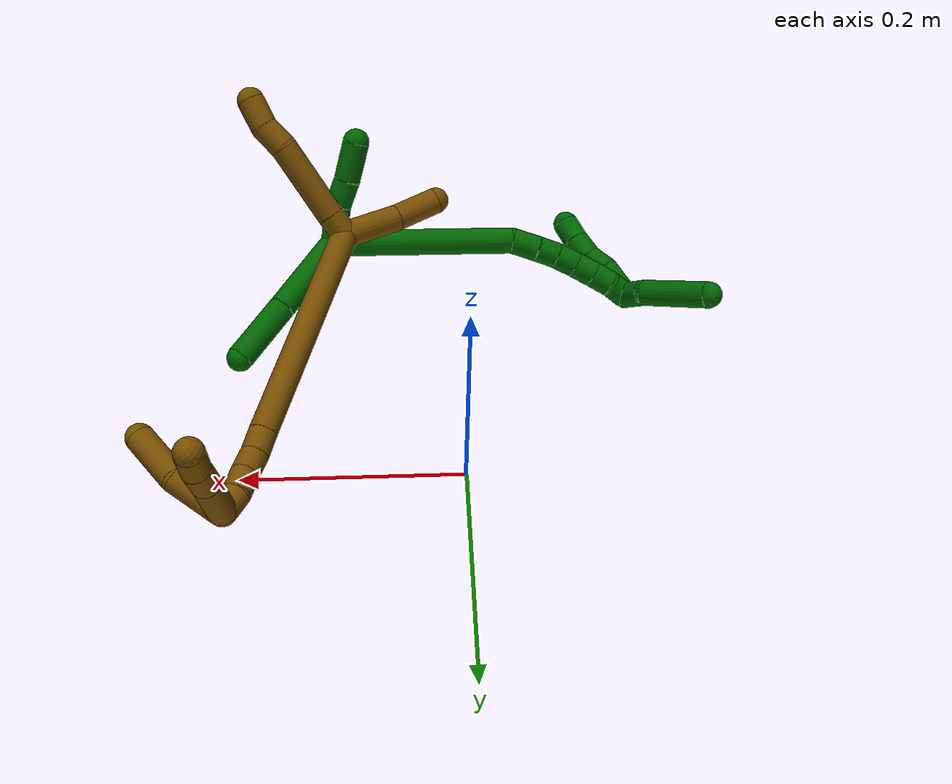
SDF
<sdf version="1.7">
 <world name="default">
  <model name="6">
   <static>0</static>
   <link name="6">
    <collision name="collision-cylinder-e_1_2_8">
     <pose>0.040574 -0.013552 0.003498 1.31818 1.23861 1.00908</pose>
     <geometry><cylinder><radius>0.0125</radius><length>0.08584</length></cylinder></geometry>
     <surface>
      <friction><ode><mu>1.16</mu><mu2>1.16</mu2><slip1>0</slip1><slip2>0</slip2></ode></friction>
      <contact><ode><kp>1e+06</kp><kd>1</kd><max_vel>0</max_vel><min_depth>0.001</min_depth></ode></contact>
     </surface>
    </collision>
    <visual name="visual-cylinder-e_1_2_8">
     <pose>0.040574 -0.013552 0.003498 1.31818 1.23861 1.00908</pose>
     <geometry><cylinder><radius>0.0125</radius><length>0.08584</length></cylinder></geometry>
     <material><ambient>0 0.392157 0.003922 1</ambient></material>
    </visual>
    <collision name="collision-cylinder-e_2_8_6">
     <pose>0.11168 -0.036643 0.00943 1.32098 1.25892 1.02979</pose>
     <geometry><cylinder><radius>0.0125</radius><length>0.06416</length></cylinder></geometry>
     <surface>
      <friction><ode><mu>1.16</mu><mu2>1.16</mu2><slip1>0</slip1><slip2>0</slip2></ode></friction>
      <contact><ode><kp>1e+06</kp><kd>1</kd><max_vel>0</max_vel><min_depth>0.001</min_depth></ode></contact>
     </surface>
    </collision>
    <visual name="visual-cylinder-e_2_8_6">
     <pose>0.11168 -0.036643 0.00943 1.32098 1.25892 1.02979</pose>
     <geometry><cylinder><radius>0.0125</radius><length>0.06416</length></cylinder></geometry>
     <material><ambient>0 0.392157 0.003922 1</ambient></material>
    </visual>
    <collision name="collision-cylinder-e_1_2_9">
     <pose>-0.012663 -0.002599 -0.012739 2.94033 -0.772189 -2.65465</pose>
     <geometry><cylinder><radius>0.0125</radius><length>0.036298</length></cylinder></geometry>
     <surface>
      <friction><ode><mu>1.16</mu><mu2>1.16</mu2><slip1>0</slip1><slip2>0</slip2></ode></friction>
      <contact><ode><kp>1e+06</kp><kd>1</kd><max_vel>0</max_vel><min_depth>0.001</min_depth></ode></contact>
     </surface>
    </collision>
    <visual name="visual-cylinder-e_1_2_9">
     <pose>-0.012663 -0.002599 -0.012739 2.94033 -0.772189 -2.65465</pose>
     <geometry><cylinder><radius>0.0125</radius><length>0.036298</length></cylinder></geometry>
     <material><ambient>0 0.392157 0.003922 1</ambient></material>
    </visual>
    <collision name="collision-cylinder-e_2_9_10">
     <pose>-0.036046 -0.008452 -0.03246 2.70553 -0.947797 -2.32606</pose>
     <geometry><cylinder><radius>0.0125</radius><length>0.026402</length></cylinder></geometry>
     <surface>
      <friction><ode><mu>1.16</mu><mu2>1.16</mu2><slip1>0</slip1><slip2>0</slip2></ode></friction>
      <contact><ode><kp>1e+06</kp><kd>1</kd><max_vel>0</max_vel><min_depth>0.001</min_depth></ode></contact>
     </surface>
    </collision>
    <visual name="visual-cylinder-e_2_9_10">
     <pose>-0.036046 -0.008452 -0.03246 2.70553 -0.947797 -2.32606</pose>
     <geometry><cylinder><radius>0.0125</radius><length>0.026402</length></cylinder></geometry>
     <material><ambient>0 0.392157 0.003922 1</ambient></material>
    </visual>
    <collision name="collision-cylinder-e_3_10_5">
     <pose>-0.060719 -0.016361 -0.050909 2.75589 -0.845184 -2.32223</pose>
     <geometry><cylinder><radius>0.0125</radius><length>0.0373</length></cylinder></geometry>
     <surface>
      <friction><ode><mu>1.16</mu><mu2>1.16</mu2><slip1>0</slip1><slip2>0</slip2></ode></friction>
      <contact><ode><kp>1e+06</kp><kd>1</kd><max_vel>0</max_vel><min_depth>0.001</min_depth></ode></contact>
     </surface>
    </collision>
    <visual name="visual-cylinder-e_3_10_5">
     <pose>-0.060719 -0.016361 -0.050909 2.75589 -0.845184 -2.32223</pose>
     <geometry><cylinder><radius>0.0125</radius><length>0.0373</length></cylinder></geometry>
     <material><ambient>0 0.392157 0.003922 1</ambient></material>
    </visual>
    <collision name="collision-cylinder-e_1_2_11">
     <pose>-0.064799 -0.023395 0.05247 0.419423 -0.845451 -0.190909</pose>
     <geometry><cylinder><radius>0.0125</radius><length>0.173198</length></cylinder></geometry>
     <surface>
      <friction><ode><mu>1.16</mu><mu2>1.16</mu2><slip1>0</slip1><slip2>0</slip2></ode></friction>
      <contact><ode><kp>1e+06</kp><kd>1</kd><max_vel>0</max_vel><min_depth>0.001</min_depth></ode></contact>
     </surface>
    </collision>
    <visual name="visual-cylinder-e_1_2_11">
     <pose>-0.064799 -0.023395 0.05247 0.419423 -0.845451 -0.190909</pose>
     <geometry><cylinder><radius>0.0125</radius><length>0.173198</length></cylinder></geometry>
     <material><ambient>0 0.392157 0.003922 1</ambient></material>
    </visual>
    <collision name="collision-cylinder-e_2_11_12">
     <pose>-0.136151 -0.050871 0.115688 0.362833 -0.517992 -0.097124</pose>
     <geometry><cylinder><radius>0.0125</radius><length>0.026467</length></cylinder></geometry>
     <surface>
      <friction><ode><mu>1.16</mu><mu2>1.16</mu2><slip1>0</slip1><slip2>0</slip2></ode></friction>
      <contact><ode><kp>1e+06</kp><kd>1</kd><max_vel>0</max_vel><min_depth>0.001</min_depth></ode></contact>
     </surface>
    </collision>
    <visual name="visual-cylinder-e_2_11_12">
     <pose>-0.136151 -0.050871 0.115688 0.362833 -0.517992 -0.097124</pose>
     <geometry><cylinder><radius>0.0125</radius><length>0.026467</length></cylinder></geometry>
     <material><ambient>0 0.392157 0.003922 1</ambient></material>
    </visual>
    <collision name="collision-cylinder-e_3_12_13">
     <pose>-0.147639 -0.057417 0.134822 0.285913 -0.514072 -0.075632</pose>
     <geometry><cylinder><radius>0.0125</radius><length>0.020074</length></cylinder></geometry>
     <surface>
      <friction><ode><mu>1.16</mu><mu2>1.16</mu2><slip1>0</slip1><slip2>0</slip2></ode></friction>
      <contact><ode><kp>1e+06</kp><kd>1</kd><max_vel>0</max_vel><min_depth>0.001</min_depth></ode></contact>
     </surface>
    </collision>
    <visual name="visual-cylinder-e_3_12_13">
     <pose>-0.147639 -0.057417 0.134822 0.285913 -0.514072 -0.075632</pose>
     <geometry><cylinder><radius>0.0125</radius><length>0.020074</length></cylinder></geometry>
     <material><ambient>0 0.392157 0.003922 1</ambient></material>
    </visual>
    <collision name="collision-cylinder-e_4_13_14">
     <pose>-0.156424 -0.062563 0.152163 0.290926 -0.390639 -0.05795</pose>
     <geometry><cylinder><radius>0.0125</radius><length>0.020222</length></cylinder></geometry>
     <surface>
      <friction><ode><mu>1.16</mu><mu2>1.16</mu2><slip1>0</slip1><slip2>0</slip2></ode></friction>
      <contact><ode><kp>1e+06</kp><kd>1</kd><max_vel>0</max_vel><min_depth>0.001</min_depth></ode></contact>
     </surface>
    </collision>
    <visual name="visual-cylinder-e_4_13_14">
     <pose>-0.156424 -0.062563 0.152163 0.290926 -0.390639 -0.05795</pose>
     <geometry><cylinder><radius>0.0125</radius><length>0.020222</length></cylinder></geometry>
     <material><ambient>0 0.392157 0.003922 1</ambient></material>
    </visual>
    <collision name="collision-cylinder-e_5_14_15">
     <pose>-0.163707 -0.06804 0.170103 0.301642 -0.349824 -0.053701</pose>
     <geometry><cylinder><radius>0.0125</radius><length>0.020029</length></cylinder></geometry>
     <surface>
      <friction><ode><mu>1.16</mu><mu2>1.16</mu2><slip1>0</slip1><slip2>0</slip2></ode></friction>
      <contact><ode><kp>1e+06</kp><kd>1</kd><max_vel>0</max_vel><min_depth>0.001</min_depth></ode></contact>
     </surface>
    </collision>
    <visual name="visual-cylinder-e_5_14_15">
     <pose>-0.163707 -0.06804 0.170103 0.301642 -0.349824 -0.053701</pose>
     <geometry><cylinder><radius>0.0125</radius><length>0.020029</length></cylinder></geometry>
     <material><ambient>0 0.392157 0.003922 1</ambient></material>
    </visual>
    <collision name="collision-cylinder-e_6_15_16">
     <pose>-0.170381 -0.073945 0.188025 0.334826 -0.330032 -0.056271</pose>
     <geometry><cylinder><radius>0.0125</radius><length>0.020009</length></cylinder></geometry>
     <surface>
      <friction><ode><mu>1.16</mu><mu2>1.16</mu2><slip1>0</slip1><slip2>0</slip2></ode></friction>
      <contact><ode><kp>1e+06</kp><kd>1</kd><max_vel>0</max_vel><min_depth>0.001</min_depth></ode></contact>
     </surface>
    </collision>
    <visual name="visual-cylinder-e_6_15_16">
     <pose>-0.170381 -0.073945 0.188025 0.334826 -0.330032 -0.056271</pose>
     <geometry><cylinder><radius>0.0125</radius><length>0.020009</length></cylinder></geometry>
     <material><ambient>0 0.392157 0.003922 1</ambient></material>
    </visual>
    <collision name="collision-cylinder-e_7_16_1">
     <pose>-0.176127 -0.077195 0.206645 0.014487 -0.253087 -0.001843</pose>
     <geometry><cylinder><radius>0.0125</radius><length>0.020002</length></cylinder></geometry>
     <surface>
      <friction><ode><mu>1.16</mu><mu2>1.16</mu2><slip1>0</slip1><slip2>0</slip2></ode></friction>
      <contact><ode><kp>1e+06</kp><kd>1</kd><max_vel>0</max_vel><min_depth>0.001</min_depth></ode></contact>
     </surface>
    </collision>
    <visual name="visual-cylinder-e_7_16_1">
     <pose>-0.176127 -0.077195 0.206645 0.014487 -0.253087 -0.001843</pose>
     <geometry><cylinder><radius>0.0125</radius><length>0.020002</length></cylinder></geometry>
     <material><ambient>0 0.392157 0.003922 1</ambient></material>
    </visual>
    <collision name="collision-cylinder-e_1_1_17">
     <pose>-0.181823 -0.067413 0.203039 -2.50015 -0.190121 0.559027</pose>
     <geometry><cylinder><radius>0.0125</radius><length>0.033777</length></cylinder></geometry>
     <surface>
      <friction><ode><mu>1.16</mu><mu2>1.16</mu2><slip1>0</slip1><slip2>0</slip2></ode></friction>
      <contact><ode><kp>1e+06</kp><kd>1</kd><max_vel>0</max_vel><min_depth>0.001</min_depth></ode></contact>
     </surface>
    </collision>
    <visual name="visual-cylinder-e_1_1_17">
     <pose>-0.181823 -0.067413 0.203039 -2.50015 -0.190121 0.559027</pose>
     <geometry><cylinder><radius>0.0125</radius><length>0.033777</length></cylinder></geometry>
     <material><ambient>0 0.392157 0.003922 1</ambient></material>
    </visual>
    <collision name="collision-cylinder-e_2_17_18">
     <pose>-0.184117 -0.050982 0.181794 -2.45608 0.087114 -0.243073</pose>
     <geometry><cylinder><radius>0.0125</radius><length>0.020637</length></cylinder></geometry>
     <surface>
      <friction><ode><mu>1.16</mu><mu2>1.16</mu2><slip1>0</slip1><slip2>0</slip2></ode></friction>
      <contact><ode><kp>1e+06</kp><kd>1</kd><max_vel>0</max_vel><min_depth>0.001</min_depth></ode></contact>
     </surface>
    </collision>
    <visual name="visual-cylinder-e_2_17_18">
     <pose>-0.184117 -0.050982 0.181794 -2.45608 0.087114 -0.243073</pose>
     <geometry><cylinder><radius>0.0125</radius><length>0.020637</length></cylinder></geometry>
     <material><ambient>0 0.392157 0.003922 1</ambient></material>
    </visual>
    <collision name="collision-cylinder-e_3_18_19">
     <pose>-0.185427 -0.037133 0.165613 -2.41283 -0.197702 0.508772</pose>
     <geometry><cylinder><radius>0.0125</radius><length>0.022484</length></cylinder></geometry>
     <surface>
      <friction><ode><mu>1.16</mu><mu2>1.16</mu2><slip1>0</slip1><slip2>0</slip2></ode></friction>
      <contact><ode><kp>1e+06</kp><kd>1</kd><max_vel>0</max_vel><min_depth>0.001</min_depth></ode></contact>
     </surface>
    </collision>
    <visual name="visual-cylinder-e_3_18_19">
     <pose>-0.185427 -0.037133 0.165613 -2.41283 -0.197702 0.508772</pose>
     <geometry><cylinder><radius>0.0125</radius><length>0.022484</length></cylinder></geometry>
     <material><ambient>0 0.392157 0.003922 1</ambient></material>
    </visual>
    <collision name="collision-cylinder-e_4_19_4">
     <pose>-0.190965 -0.022216 0.149332 -2.38696 -0.292416 0.711541</pose>
     <geometry><cylinder><radius>0.0125</radius><length>0.023102</length></cylinder></geometry>
     <surface>
      <friction><ode><mu>1.16</mu><mu2>1.16</mu2><slip1>0</slip1><slip2>0</slip2></ode></friction>
      <contact><ode><kp>1e+06</kp><kd>1</kd><max_vel>0</max_vel><min_depth>0.001</min_depth></ode></contact>
     </surface>
    </collision>
    <visual name="visual-cylinder-e_4_19_4">
     <pose>-0.190965 -0.022216 0.149332 -2.38696 -0.292416 0.711541</pose>
     <geometry><cylinder><radius>0.0125</radius><length>0.023102</length></cylinder></geometry>
     <material><ambient>0 0.392157 0.003922 1</ambient></material>
    </visual>
    <collision name="collision-cylinder-e_1_1_20">
     <pose>-0.182293 -0.091842 0.216102 1.58629 -0.247197 -0.251016</pose>
     <geometry><cylinder><radius>0.0125</radius><length>0.029925</length></cylinder></geometry>
     <surface>
      <friction><ode><mu>1.16</mu><mu2>1.16</mu2><slip1>0</slip1><slip2>0</slip2></ode></friction>
      <contact><ode><kp>1e+06</kp><kd>1</kd><max_vel>0</max_vel><min_depth>0.001</min_depth></ode></contact>
     </surface>
    </collision>
    <visual name="visual-cylinder-e_1_1_20">
     <pose>-0.182293 -0.091842 0.216102 1.58629 -0.247197 -0.251016</pose>
     <geometry><cylinder><radius>0.0125</radius><length>0.029925</length></cylinder></geometry>
     <material><ambient>0 0.392157 0.003922 1</ambient></material>
    </visual>
    <collision name="collision-cylinder-e_2_20_3">
     <pose>-0.199555 -0.137207 0.225382 1.27201 -0.398658 -0.296127</pose>
     <geometry><cylinder><radius>0.0125</radius><length>0.070075</length></cylinder></geometry>
     <surface>
      <friction><ode><mu>1.16</mu><mu2>1.16</mu2><slip1>0</slip1><slip2>0</slip2></ode></friction>
      <contact><ode><kp>1e+06</kp><kd>1</kd><max_vel>0</max_vel><min_depth>0.001</min_depth></ode></contact>
     </surface>
    </collision>
    <visual name="visual-cylinder-e_2_20_3">
     <pose>-0.199555 -0.137207 0.225382 1.27201 -0.398658 -0.296127</pose>
     <geometry><cylinder><radius>0.0125</radius><length>0.070075</length></cylinder></geometry>
     <material><ambient>0 0.392157 0.003922 1</ambient></material>
    </visual>
    <collision name="collision-sphere-3">
     <pose>-0.213156 -0.168066 0.234887 0 -0 0</pose>
     <geometry><sphere><radius>0.0125</radius></sphere></geometry>
     <surface>
      <friction><ode><mu>1.16</mu><mu2>1.16</mu2><slip1>0</slip1><slip2>0</slip2></ode></friction>
      <contact><ode><kp>1e+06</kp><kd>1</kd><max_vel>0</max_vel><min_depth>0.001</min_depth></ode></contact>
     </surface>
    </collision>
    <visual name="visual-sphere-3">
     <pose>-0.213156 -0.168066 0.234887 0 -0 0</pose>
     <geometry><sphere><radius>0.0125</radius></sphere></geometry>
     <material><ambient>0 0.392157 0.003922 1</ambient></material>
    </visual>
    <collision name="collision-sphere-20">
     <pose>-0.185954 -0.106348 0.215877 0 -0 0</pose>
     <geometry><sphere><radius>0.0125</radius></sphere></geometry>
     <surface>
      <friction><ode><mu>1.16</mu><mu2>1.16</mu2><slip1>0</slip1><slip2>0</slip2></ode></friction>
      <contact><ode><kp>1e+06</kp><kd>1</kd><max_vel>0</max_vel><min_depth>0.001</min_depth></ode></contact>
     </surface>
    </collision>
    <visual name="visual-sphere-20">
     <pose>-0.185954 -0.106348 0.215877 0 -0 0</pose>
     <geometry><sphere><radius>0.0125</radius></sphere></geometry>
     <material><ambient>0 0.392157 0.003922 1</ambient></material>
    </visual>
    <collision name="collision-sphere-4">
     <pose>-0.194295 -0.014639 0.141274 0 -0 0</pose>
     <geometry><sphere><radius>0.0125</radius></sphere></geometry>
     <surface>
      <friction><ode><mu>1.16</mu><mu2>1.16</mu2><slip1>0</slip1><slip2>0</slip2></ode></friction>
      <contact><ode><kp>1e+06</kp><kd>1</kd><max_vel>0</max_vel><min_depth>0.001</min_depth></ode></contact>
     </surface>
    </collision>
    <visual name="visual-sphere-4">
     <pose>-0.194295 -0.014639 0.141274 0 -0 0</pose>
     <geometry><sphere><radius>0.0125</radius></sphere></geometry>
     <material><ambient>0 0.392157 0.003922 1</ambient></material>
    </visual>
    <collision name="collision-sphere-5">
     <pose>-0.074671 -0.021017 -0.062375 0 -0 0</pose>
     <geometry><sphere><radius>0.0125</radius></sphere></geometry>
     <surface>
      <friction><ode><mu>1.16</mu><mu2>1.16</mu2><slip1>0</slip1><slip2>0</slip2></ode></friction>
      <contact><ode><kp>1e+06</kp><kd>1</kd><max_vel>0</max_vel><min_depth>0.001</min_depth></ode></contact>
     </surface>
    </collision>
    <visual name="visual-sphere-5">
     <pose>-0.074671 -0.021017 -0.062375 0 -0 0</pose>
     <geometry><sphere><radius>0.0125</radius></sphere></geometry>
     <material><ambient>0 0.392157 0.003922 1</ambient></material>
    </visual>
    <collision name="collision-sphere-10">
     <pose>-0.046767 -0.011705 -0.039442 0 -0 0</pose>
     <geometry><sphere><radius>0.0125</radius></sphere></geometry>
     <surface>
      <friction><ode><mu>1.16</mu><mu2>1.16</mu2><slip1>0</slip1><slip2>0</slip2></ode></friction>
      <contact><ode><kp>1e+06</kp><kd>1</kd><max_vel>0</max_vel><min_depth>0.001</min_depth></ode></contact>
     </surface>
    </collision>
    <visual name="visual-sphere-10">
     <pose>-0.046767 -0.011705 -0.039442 0 -0 0</pose>
     <geometry><sphere><radius>0.0125</radius></sphere></geometry>
     <material><ambient>0 0.392157 0.003922 1</ambient></material>
    </visual>
    <collision name="collision-sphere-6">
     <pose>0.142212 -0.046181 0.011864 0 -0 0</pose>
     <geometry><sphere><radius>0.0125</radius></sphere></geometry>
     <surface>
      <friction><ode><mu>1.16</mu><mu2>1.16</mu2><slip1>0</slip1><slip2>0</slip2></ode></friction>
      <contact><ode><kp>1e+06</kp><kd>1</kd><max_vel>0</max_vel><min_depth>0.001</min_depth></ode></contact>
     </surface>
    </collision>
    <visual name="visual-sphere-6">
     <pose>0.142212 -0.046181 0.011864 0 -0 0</pose>
     <geometry><sphere><radius>0.0125</radius></sphere></geometry>
     <material><ambient>0 0.392157 0.003922 1</ambient></material>
    </visual>
    <collision name="collision-sphere-9">
     <pose>-0.025325 -0.005198 -0.025479 0 -0 0</pose>
     <geometry><sphere><radius>0.0125</radius></sphere></geometry>
     <surface>
      <friction><ode><mu>1.16</mu><mu2>1.16</mu2><slip1>0</slip1><slip2>0</slip2></ode></friction>
      <contact><ode><kp>1e+06</kp><kd>1</kd><max_vel>0</max_vel><min_depth>0.001</min_depth></ode></contact>
     </surface>
    </collision>
    <visual name="visual-sphere-9">
     <pose>-0.025325 -0.005198 -0.025479 0 -0 0</pose>
     <geometry><sphere><radius>0.0125</radius></sphere></geometry>
     <material><ambient>0 0.392157 0.003922 1</ambient></material>
    </visual>
    <collision name="collision-sphere-2">
     <geometry><sphere><radius>0.0125</radius></sphere></geometry>
     <surface>
      <friction><ode><mu>1.16</mu><mu2>1.16</mu2><slip1>0</slip1><slip2>0</slip2></ode></friction>
      <contact><ode><kp>1e+06</kp><kd>1</kd><max_vel>0</max_vel><min_depth>0.001</min_depth></ode></contact>
     </surface>
    </collision>
    <visual name="visual-sphere-2">
     <geometry><sphere><radius>0.0125</radius></sphere></geometry>
     <material><ambient>0 0.392157 0.003922 1</ambient></material>
    </visual>
    <collision name="collision-sphere-19">
     <pose>-0.187635 -0.029793 0.15739 0 -0 0</pose>
     <geometry><sphere><radius>0.0125</radius></sphere></geometry>
     <surface>
      <friction><ode><mu>1.16</mu><mu2>1.16</mu2><slip1>0</slip1><slip2>0</slip2></ode></friction>
      <contact><ode><kp>1e+06</kp><kd>1</kd><max_vel>0</max_vel><min_depth>0.001</min_depth></ode></contact>
     </surface>
    </collision>
    <visual name="visual-sphere-19">
     <pose>-0.187635 -0.029793 0.15739 0 -0 0</pose>
     <geometry><sphere><radius>0.0125</radius></sphere></geometry>
     <material><ambient>0 0.392157 0.003922 1</ambient></material>
    </visual>
    <collision name="collision-sphere-8">
     <pose>0.081147 -0.027105 0.006997 0 -0 0</pose>
     <geometry><sphere><radius>0.0125</radius></sphere></geometry>
     <surface>
      <friction><ode><mu>1.16</mu><mu2>1.16</mu2><slip1>0</slip1><slip2>0</slip2></ode></friction>
      <contact><ode><kp>1e+06</kp><kd>1</kd><max_vel>0</max_vel><min_depth>0.001</min_depth></ode></contact>
     </surface>
    </collision>
    <visual name="visual-sphere-8">
     <pose>0.081147 -0.027105 0.006997 0 -0 0</pose>
     <geometry><sphere><radius>0.0125</radius></sphere></geometry>
     <material><ambient>0 0.392157 0.003922 1</ambient></material>
    </visual>
    <collision name="collision-sphere-11">
     <pose>-0.129599 -0.04679 0.104939 0 -0 0</pose>
     <geometry><sphere><radius>0.0125</radius></sphere></geometry>
     <surface>
      <friction><ode><mu>1.16</mu><mu2>1.16</mu2><slip1>0</slip1><slip2>0</slip2></ode></friction>
      <contact><ode><kp>1e+06</kp><kd>1</kd><max_vel>0</max_vel><min_depth>0.001</min_depth></ode></contact>
     </surface>
    </collision>
    <visual name="visual-sphere-11">
     <pose>-0.129599 -0.04679 0.104939 0 -0 0</pose>
     <geometry><sphere><radius>0.0125</radius></sphere></geometry>
     <material><ambient>0 0.392157 0.003922 1</ambient></material>
    </visual>
    <collision name="collision-sphere-12">
     <pose>-0.142703 -0.054952 0.126437 0 -0 0</pose>
     <geometry><sphere><radius>0.0125</radius></sphere></geometry>
     <surface>
      <friction><ode><mu>1.16</mu><mu2>1.16</mu2><slip1>0</slip1><slip2>0</slip2></ode></friction>
      <contact><ode><kp>1e+06</kp><kd>1</kd><max_vel>0</max_vel><min_depth>0.001</min_depth></ode></contact>
     </surface>
    </collision>
    <visual name="visual-sphere-12">
     <pose>-0.142703 -0.054952 0.126437 0 -0 0</pose>
     <geometry><sphere><radius>0.0125</radius></sphere></geometry>
     <material><ambient>0 0.392157 0.003922 1</ambient></material>
    </visual>
    <collision name="collision-sphere-13">
     <pose>-0.152574 -0.059882 0.143207 0 -0 0</pose>
     <geometry><sphere><radius>0.0125</radius></sphere></geometry>
     <surface>
      <friction><ode><mu>1.16</mu><mu2>1.16</mu2><slip1>0</slip1><slip2>0</slip2></ode></friction>
      <contact><ode><kp>1e+06</kp><kd>1</kd><max_vel>0</max_vel><min_depth>0.001</min_depth></ode></contact>
     </surface>
    </collision>
    <visual name="visual-sphere-13">
     <pose>-0.152574 -0.059882 0.143207 0 -0 0</pose>
     <geometry><sphere><radius>0.0125</radius></sphere></geometry>
     <material><ambient>0 0.392157 0.003922 1</ambient></material>
    </visual>
    <collision name="collision-sphere-14">
     <pose>-0.160274 -0.065245 0.16112 0 -0 0</pose>
     <geometry><sphere><radius>0.0125</radius></sphere></geometry>
     <surface>
      <friction><ode><mu>1.16</mu><mu2>1.16</mu2><slip1>0</slip1><slip2>0</slip2></ode></friction>
      <contact><ode><kp>1e+06</kp><kd>1</kd><max_vel>0</max_vel><min_depth>0.001</min_depth></ode></contact>
     </surface>
    </collision>
    <visual name="visual-sphere-14">
     <pose>-0.160274 -0.065245 0.16112 0 -0 0</pose>
     <geometry><sphere><radius>0.0125</radius></sphere></geometry>
     <material><ambient>0 0.392157 0.003922 1</ambient></material>
    </visual>
    <collision name="collision-sphere-15">
     <pose>-0.167139 -0.070835 0.179086 0 -0 0</pose>
     <geometry><sphere><radius>0.0125</radius></sphere></geometry>
     <surface>
      <friction><ode><mu>1.16</mu><mu2>1.16</mu2><slip1>0</slip1><slip2>0</slip2></ode></friction>
      <contact><ode><kp>1e+06</kp><kd>1</kd><max_vel>0</max_vel><min_depth>0.001</min_depth></ode></contact>
     </surface>
    </collision>
    <visual name="visual-sphere-15">
     <pose>-0.167139 -0.070835 0.179086 0 -0 0</pose>
     <geometry><sphere><radius>0.0125</radius></sphere></geometry>
     <material><ambient>0 0.392157 0.003922 1</ambient></material>
    </visual>
    <collision name="collision-sphere-16">
     <pose>-0.173623 -0.077055 0.196963 0 -0 0</pose>
     <geometry><sphere><radius>0.0125</radius></sphere></geometry>
     <surface>
      <friction><ode><mu>1.16</mu><mu2>1.16</mu2><slip1>0</slip1><slip2>0</slip2></ode></friction>
      <contact><ode><kp>1e+06</kp><kd>1</kd><max_vel>0</max_vel><min_depth>0.001</min_depth></ode></contact>
     </surface>
    </collision>
    <visual name="visual-sphere-16">
     <pose>-0.173623 -0.077055 0.196963 0 -0 0</pose>
     <geometry><sphere><radius>0.0125</radius></sphere></geometry>
     <material><ambient>0 0.392157 0.003922 1</ambient></material>
    </visual>
    <collision name="collision-sphere-1">
     <pose>-0.178632 -0.077336 0.216326 0 -0 0</pose>
     <geometry><sphere><radius>0.0125</radius></sphere></geometry>
     <surface>
      <friction><ode><mu>1.16</mu><mu2>1.16</mu2><slip1>0</slip1><slip2>0</slip2></ode></friction>
      <contact><ode><kp>1e+06</kp><kd>1</kd><max_vel>0</max_vel><min_depth>0.001</min_depth></ode></contact>
     </surface>
    </collision>
    <visual name="visual-sphere-1">
     <pose>-0.178632 -0.077336 0.216326 0 -0 0</pose>
     <geometry><sphere><radius>0.0125</radius></sphere></geometry>
     <material><ambient>0 0.392157 0.003922 1</ambient></material>
    </visual>
    <collision name="collision-sphere-18">
     <pose>-0.183219 -0.044474 0.173836 0 -0 0</pose>
     <geometry><sphere><radius>0.0125</radius></sphere></geometry>
     <surface>
      <friction><ode><mu>1.16</mu><mu2>1.16</mu2><slip1>0</slip1><slip2>0</slip2></ode></friction>
      <contact><ode><kp>1e+06</kp><kd>1</kd><max_vel>0</max_vel><min_depth>0.001</min_depth></ode></contact>
     </surface>
    </collision>
    <visual name="visual-sphere-18">
     <pose>-0.183219 -0.044474 0.173836 0 -0 0</pose>
     <geometry><sphere><radius>0.0125</radius></sphere></geometry>
     <material><ambient>0 0.392157 0.003922 1</ambient></material>
    </visual>
    <collision name="collision-sphere-17">
     <pose>-0.185015 -0.05749 0.189751 0 -0 0</pose>
     <geometry><sphere><radius>0.0125</radius></sphere></geometry>
     <surface>
      <friction><ode><mu>1.16</mu><mu2>1.16</mu2><slip1>0</slip1><slip2>0</slip2></ode></friction>
      <contact><ode><kp>1e+06</kp><kd>1</kd><max_vel>0</max_vel><min_depth>0.001</min_depth></ode></contact>
     </surface>
    </collision>
    <visual name="visual-sphere-17">
     <pose>-0.185015 -0.05749 0.189751 0 -0 0</pose>
     <geometry><sphere><radius>0.0125</radius></sphere></geometry>
     <material><ambient>0 0.392157 0.003922 1</ambient></material>
    </visual>
    <inertial>
     <pose>-0.082871 -0.044913 0.089288 0 -0 0</pose>
     <mass>0.75</mass>
     <inertia>
      <ixx>0.000284</ixx>
      <ixy>0</ixy>
      <ixz>0</ixz>
      <iyy>0.000463</iyy>
      <iyz>0</iyz>
      <izz>0.000464</izz>
     </inertia>
    </inertial>
   </link>
   <pose>0.118025 -0.232386 0.065134 -2.45807 0.339256 0.659463</pose>
  </model>
  <model name="12">
   <static>0</static>
   <link name="12">
    <collision name="collision-cylinder-e_1_2_8">
     <pose>9.8e-05 -0.00267 0.011076 0.236576 0.008637 0.001026</pose>
     <geometry><cylinder><radius>0.0125</radius><length>0.022788</length></cylinder></geometry>
     <surface>
      <friction><ode><mu>1.16</mu><mu2>1.16</mu2><slip1>0</slip1><slip2>0</slip2></ode></friction>
      <contact><ode><kp>1e+06</kp><kd>1</kd><max_vel>0</max_vel><min_depth>0.001</min_depth></ode></contact>
     </surface>
    </collision>
    <visual name="visual-cylinder-e_1_2_8">
     <pose>9.8e-05 -0.00267 0.011076 0.236576 0.008637 0.001026</pose>
     <geometry><cylinder><radius>0.0125</radius><length>0.022788</length></cylinder></geometry>
     <material><ambient>0.466667 0.301961 0 1</ambient></material>
    </visual>
    <collision name="collision-cylinder-e_2_8_9">
     <pose>0.000153 -0.01575 0.058064 0.282113 -0.001162 -0.000165</pose>
     <geometry><cylinder><radius>0.0125</radius><length>0.074779</length></cylinder></geometry>
     <surface>
      <friction><ode><mu>1.16</mu><mu2>1.16</mu2><slip1>0</slip1><slip2>0</slip2></ode></friction>
      <contact><ode><kp>1e+06</kp><kd>1</kd><max_vel>0</max_vel><min_depth>0.001</min_depth></ode></contact>
     </surface>
    </collision>
    <visual name="visual-cylinder-e_2_8_9">
     <pose>0.000153 -0.01575 0.058064 0.282113 -0.001162 -0.000165</pose>
     <geometry><cylinder><radius>0.0125</radius><length>0.074779</length></cylinder></geometry>
     <material><ambient>0.466667 0.301961 0 1</ambient></material>
    </visual>
    <collision name="collision-cylinder-e_3_9_10">
     <pose>0.003243 -0.030335 0.105402 0.350446 0.252078 0.044858</pose>
     <geometry><cylinder><radius>0.0125</radius><length>0.025125</length></cylinder></geometry>
     <surface>
      <friction><ode><mu>1.16</mu><mu2>1.16</mu2><slip1>0</slip1><slip2>0</slip2></ode></friction>
      <contact><ode><kp>1e+06</kp><kd>1</kd><max_vel>0</max_vel><min_depth>0.001</min_depth></ode></contact>
     </surface>
    </collision>
    <visual name="visual-cylinder-e_3_9_10">
     <pose>0.003243 -0.030335 0.105402 0.350446 0.252078 0.044858</pose>
     <geometry><cylinder><radius>0.0125</radius><length>0.025125</length></cylinder></geometry>
     <material><ambient>0.466667 0.301961 0 1</ambient></material>
    </visual>
    <collision name="collision-cylinder-e_4_10_6">
     <pose>0.006894 -0.041943 0.12827 0.57601 0.037937 0.01124</pose>
     <geometry><cylinder><radius>0.0125</radius><length>0.027307</length></cylinder></geometry>
     <surface>
      <friction><ode><mu>1.16</mu><mu2>1.16</mu2><slip1>0</slip1><slip2>0</slip2></ode></friction>
      <contact><ode><kp>1e+06</kp><kd>1</kd><max_vel>0</max_vel><min_depth>0.001</min_depth></ode></contact>
     </surface>
    </collision>
    <visual name="visual-cylinder-e_4_10_6">
     <pose>0.006894 -0.041943 0.12827 0.57601 0.037937 0.01124</pose>
     <geometry><cylinder><radius>0.0125</radius><length>0.027307</length></cylinder></geometry>
     <material><ambient>0.466667 0.301961 0 1</ambient></material>
    </visual>
    <collision name="collision-cylinder-e_1_2_11">
     <pose>-0.014533 -0.019944 -0.014965 2.21454 -0.527726 -0.991022</pose>
     <geometry><cylinder><radius>0.0125</radius><length>0.057722</length></cylinder></geometry>
     <surface>
      <friction><ode><mu>1.16</mu><mu2>1.16</mu2><slip1>0</slip1><slip2>0</slip2></ode></friction>
      <contact><ode><kp>1e+06</kp><kd>1</kd><max_vel>0</max_vel><min_depth>0.001</min_depth></ode></contact>
     </surface>
    </collision>
    <visual name="visual-cylinder-e_1_2_11">
     <pose>-0.014533 -0.019944 -0.014965 2.21454 -0.527726 -0.991022</pose>
     <geometry><cylinder><radius>0.0125</radius><length>0.057722</length></cylinder></geometry>
     <material><ambient>0.466667 0.301961 0 1</ambient></material>
    </visual>
    <collision name="collision-cylinder-e_2_11_5">
     <pose>-0.044044 -0.05241 -0.038039 2.14538 -0.787385 -1.30452</pose>
     <geometry><cylinder><radius>0.0125</radius><length>0.042278</length></cylinder></geometry>
     <surface>
      <friction><ode><mu>1.16</mu><mu2>1.16</mu2><slip1>0</slip1><slip2>0</slip2></ode></friction>
      <contact><ode><kp>1e+06</kp><kd>1</kd><max_vel>0</max_vel><min_depth>0.001</min_depth></ode></contact>
     </surface>
    </collision>
    <visual name="visual-cylinder-e_2_11_5">
     <pose>-0.044044 -0.05241 -0.038039 2.14538 -0.787385 -1.30452</pose>
     <geometry><cylinder><radius>0.0125</radius><length>0.042278</length></cylinder></geometry>
     <material><ambient>0.466667 0.301961 0 1</ambient></material>
    </visual>
    <collision name="collision-cylinder-e_1_2_12">
     <pose>0.027453 0.103386 -0.012941 -1.69532 0.257631 -0.291433</pose>
     <geometry><cylinder><radius>0.0125</radius><length>0.215498</length></cylinder></geometry>
     <surface>
      <friction><ode><mu>1.16</mu><mu2>1.16</mu2><slip1>0</slip1><slip2>0</slip2></ode></friction>
      <contact><ode><kp>1e+06</kp><kd>1</kd><max_vel>0</max_vel><min_depth>0.001</min_depth></ode></contact>
     </surface>
    </collision>
    <visual name="visual-cylinder-e_1_2_12">
     <pose>0.027453 0.103386 -0.012941 -1.69532 0.257631 -0.291433</pose>
     <geometry><cylinder><radius>0.0125</radius><length>0.215498</length></cylinder></geometry>
     <material><ambient>0.466667 0.301961 0 1</ambient></material>
    </visual>
    <collision name="collision-cylinder-e_2_12_13">
     <pose>0.057468 0.217067 -0.027467 -1.72357 0.241073 -0.280548</pose>
     <geometry><cylinder><radius>0.0125</radius><length>0.021454</length></cylinder></geometry>
     <surface>
      <friction><ode><mu>1.16</mu><mu2>1.16</mu2><slip1>0</slip1><slip2>0</slip2></ode></friction>
      <contact><ode><kp>1e+06</kp><kd>1</kd><max_vel>0</max_vel><min_depth>0.001</min_depth></ode></contact>
     </surface>
    </collision>
    <visual name="visual-cylinder-e_2_12_13">
     <pose>0.057468 0.217067 -0.027467 -1.72357 0.241073 -0.280548</pose>
     <geometry><cylinder><radius>0.0125</radius><length>0.021454</length></cylinder></geometry>
     <material><ambient>0.466667 0.301961 0 1</ambient></material>
    </visual>
    <collision name="collision-cylinder-e_3_13_14">
     <pose>0.062046 0.237363 -0.029089 -1.57453 0.199057 -0.199796</pose>
     <geometry><cylinder><radius>0.0125</radius><length>0.020404</length></cylinder></geometry>
     <surface>
      <friction><ode><mu>1.16</mu><mu2>1.16</mu2><slip1>0</slip1><slip2>0</slip2></ode></friction>
      <contact><ode><kp>1e+06</kp><kd>1</kd><max_vel>0</max_vel><min_depth>0.001</min_depth></ode></contact>
     </surface>
    </collision>
    <visual name="visual-cylinder-e_3_13_14">
     <pose>0.062046 0.237363 -0.029089 -1.57453 0.199057 -0.199796</pose>
     <geometry><cylinder><radius>0.0125</radius><length>0.020404</length></cylinder></geometry>
     <material><ambient>0.466667 0.301961 0 1</ambient></material>
    </visual>
    <collision name="collision-cylinder-e_4_14_15">
     <pose>0.064526 0.258199 -0.02909 -1.56743 0.042647 -0.042504</pose>
     <geometry><cylinder><radius>0.0125</radius><length>0.02169</length></cylinder></geometry>
     <surface>
      <friction><ode><mu>1.16</mu><mu2>1.16</mu2><slip1>0</slip1><slip2>0</slip2></ode></friction>
      <contact><ode><kp>1e+06</kp><kd>1</kd><max_vel>0</max_vel><min_depth>0.001</min_depth></ode></contact>
     </surface>
    </collision>
    <visual name="visual-cylinder-e_4_14_15">
     <pose>0.064526 0.258199 -0.02909 -1.56743 0.042647 -0.042504</pose>
     <geometry><cylinder><radius>0.0125</radius><length>0.02169</length></cylinder></geometry>
     <material><ambient>0.466667 0.301961 0 1</ambient></material>
    </visual>
    <collision name="collision-cylinder-e_5_15_1">
     <pose>0.06733 0.279094 -0.027301 -1.39834 0.225459 -0.189817</pose>
     <geometry><cylinder><radius>0.0125</radius><length>0.020955</length></cylinder></geometry>
     <surface>
      <friction><ode><mu>1.16</mu><mu2>1.16</mu2><slip1>0</slip1><slip2>0</slip2></ode></friction>
      <contact><ode><kp>1e+06</kp><kd>1</kd><max_vel>0</max_vel><min_depth>0.001</min_depth></ode></contact>
     </surface>
    </collision>
    <visual name="visual-cylinder-e_5_15_1">
     <pose>0.06733 0.279094 -0.027301 -1.39834 0.225459 -0.189817</pose>
     <geometry><cylinder><radius>0.0125</radius><length>0.020955</length></cylinder></geometry>
     <material><ambient>0.466667 0.301961 0 1</ambient></material>
    </visual>
    <collision name="collision-cylinder-e_1_1_16">
     <pose>0.082908 0.280579 -0.006481 0.422683 0.564356 0.124239</pose>
     <geometry><cylinder><radius>0.0125</radius><length>0.04949</length></cylinder></geometry>
     <surface>
      <friction><ode><mu>1.16</mu><mu2>1.16</mu2><slip1>0</slip1><slip2>0</slip2></ode></friction>
      <contact><ode><kp>1e+06</kp><kd>1</kd><max_vel>0</max_vel><min_depth>0.001</min_depth></ode></contact>
     </surface>
    </collision>
    <visual name="visual-cylinder-e_1_1_16">
     <pose>0.082908 0.280579 -0.006481 0.422683 0.564356 0.124239</pose>
     <geometry><cylinder><radius>0.0125</radius><length>0.04949</length></cylinder></geometry>
     <material><ambient>0.466667 0.301961 0 1</ambient></material>
    </visual>
    <collision name="collision-cylinder-e_2_16_4">
     <pose>0.10894 0.256634 0.028011 0.783577 0.531328 0.223891</pose>
     <geometry><cylinder><radius>0.0125</radius><length>0.05051</length></cylinder></geometry>
     <surface>
      <friction><ode><mu>1.16</mu><mu2>1.16</mu2><slip1>0</slip1><slip2>0</slip2></ode></friction>
      <contact><ode><kp>1e+06</kp><kd>1</kd><max_vel>0</max_vel><min_depth>0.001</min_depth></ode></contact>
     </surface>
    </collision>
    <visual name="visual-cylinder-e_2_16_4">
     <pose>0.10894 0.256634 0.028011 0.783577 0.531328 0.223891</pose>
     <geometry><cylinder><radius>0.0125</radius><length>0.05051</length></cylinder></geometry>
     <material><ambient>0.466667 0.301961 0 1</ambient></material>
    </visual>
    <collision name="collision-cylinder-e_1_1_17">
     <pose>0.055214 0.295416 -0.005459 -0.302098 -0.602041 0.094437</pose>
     <geometry><cylinder><radius>0.0125</radius><length>0.051063</length></cylinder></geometry>
     <surface>
      <friction><ode><mu>1.16</mu><mu2>1.16</mu2><slip1>0</slip1><slip2>0</slip2></ode></friction>
      <contact><ode><kp>1e+06</kp><kd>1</kd><max_vel>0</max_vel><min_depth>0.001</min_depth></ode></contact>
     </surface>
    </collision>
    <visual name="visual-cylinder-e_1_1_17">
     <pose>0.055214 0.295416 -0.005459 -0.302098 -0.602041 0.094437</pose>
     <geometry><cylinder><radius>0.0125</radius><length>0.051063</length></cylinder></geometry>
     <material><ambient>0.466667 0.301961 0 1</ambient></material>
    </visual>
    <collision name="collision-cylinder-e_2_17_18">
     <pose>0.034331 0.304682 0.024784 -0.287784 -0.545309 0.080985</pose>
     <geometry><cylinder><radius>0.0125</radius><length>0.024769</length></cylinder></geometry>
     <surface>
      <friction><ode><mu>1.16</mu><mu2>1.16</mu2><slip1>0</slip1><slip2>0</slip2></ode></friction>
      <contact><ode><kp>1e+06</kp><kd>1</kd><max_vel>0</max_vel><min_depth>0.001</min_depth></ode></contact>
     </surface>
    </collision>
    <visual name="visual-cylinder-e_2_17_18">
     <pose>0.034331 0.304682 0.024784 -0.287784 -0.545309 0.080985</pose>
     <geometry><cylinder><radius>0.0125</radius><length>0.024769</length></cylinder></geometry>
     <material><ambient>0.466667 0.301961 0 1</ambient></material>
    </visual>
    <collision name="collision-cylinder-e_3_18_3">
     <pose>0.020463 0.309743 0.044231 -0.217679 -0.663666 0.075269</pose>
     <geometry><cylinder><radius>0.0125</radius><length>0.024168</length></cylinder></geometry>
     <surface>
      <friction><ode><mu>1.16</mu><mu2>1.16</mu2><slip1>0</slip1><slip2>0</slip2></ode></friction>
      <contact><ode><kp>1e+06</kp><kd>1</kd><max_vel>0</max_vel><min_depth>0.001</min_depth></ode></contact>
     </surface>
    </collision>
    <visual name="visual-cylinder-e_3_18_3">
     <pose>0.020463 0.309743 0.044231 -0.217679 -0.663666 0.075269</pose>
     <geometry><cylinder><radius>0.0125</radius><length>0.024168</length></cylinder></geometry>
     <material><ambient>0.466667 0.301961 0 1</ambient></material>
    </visual>
    <collision name="collision-sphere-3">
     <pose>0.01302 0.311799 0.053525 0 -0 0</pose>
     <geometry><sphere><radius>0.0125</radius></sphere></geometry>
     <surface>
      <friction><ode><mu>1.16</mu><mu2>1.16</mu2><slip1>0</slip1><slip2>0</slip2></ode></friction>
      <contact><ode><kp>1e+06</kp><kd>1</kd><max_vel>0</max_vel><min_depth>0.001</min_depth></ode></contact>
     </surface>
    </collision>
    <visual name="visual-sphere-3">
     <pose>0.01302 0.311799 0.053525 0 -0 0</pose>
     <geometry><sphere><radius>0.0125</radius></sphere></geometry>
     <material><ambient>0.466667 0.301961 0 1</ambient></material>
    </visual>
    <collision name="collision-sphere-11">
     <pose>-0.029067 -0.039888 -0.029931 0 -0 0</pose>
     <geometry><sphere><radius>0.0125</radius></sphere></geometry>
     <surface>
      <friction><ode><mu>1.16</mu><mu2>1.16</mu2><slip1>0</slip1><slip2>0</slip2></ode></friction>
      <contact><ode><kp>1e+06</kp><kd>1</kd><max_vel>0</max_vel><min_depth>0.001</min_depth></ode></contact>
     </surface>
    </collision>
    <visual name="visual-sphere-11">
     <pose>-0.029067 -0.039888 -0.029931 0 -0 0</pose>
     <geometry><sphere><radius>0.0125</radius></sphere></geometry>
     <material><ambient>0.466667 0.301961 0 1</ambient></material>
    </visual>
    <collision name="collision-sphere-6">
     <pose>0.007412 -0.049375 0.139713 0 -0 0</pose>
     <geometry><sphere><radius>0.0125</radius></sphere></geometry>
     <surface>
      <friction><ode><mu>1.16</mu><mu2>1.16</mu2><slip1>0</slip1><slip2>0</slip2></ode></friction>
      <contact><ode><kp>1e+06</kp><kd>1</kd><max_vel>0</max_vel><min_depth>0.001</min_depth></ode></contact>
     </surface>
    </collision>
    <visual name="visual-sphere-6">
     <pose>0.007412 -0.049375 0.139713 0 -0 0</pose>
     <geometry><sphere><radius>0.0125</radius></sphere></geometry>
     <material><ambient>0.466667 0.301961 0 1</ambient></material>
    </visual>
    <collision name="collision-sphere-10">
     <pose>0.006377 -0.034512 0.116828 0 -0 0</pose>
     <geometry><sphere><radius>0.0125</radius></sphere></geometry>
     <surface>
      <friction><ode><mu>1.16</mu><mu2>1.16</mu2><slip1>0</slip1><slip2>0</slip2></ode></friction>
      <contact><ode><kp>1e+06</kp><kd>1</kd><max_vel>0</max_vel><min_depth>0.001</min_depth></ode></contact>
     </surface>
    </collision>
    <visual name="visual-sphere-10">
     <pose>0.006377 -0.034512 0.116828 0 -0 0</pose>
     <geometry><sphere><radius>0.0125</radius></sphere></geometry>
     <material><ambient>0.466667 0.301961 0 1</ambient></material>
    </visual>
    <collision name="collision-sphere-9">
     <pose>0.00011 -0.026158 0.093976 0 -0 0</pose>
     <geometry><sphere><radius>0.0125</radius></sphere></geometry>
     <surface>
      <friction><ode><mu>1.16</mu><mu2>1.16</mu2><slip1>0</slip1><slip2>0</slip2></ode></friction>
      <contact><ode><kp>1e+06</kp><kd>1</kd><max_vel>0</max_vel><min_depth>0.001</min_depth></ode></contact>
     </surface>
    </collision>
    <visual name="visual-sphere-9">
     <pose>0.00011 -0.026158 0.093976 0 -0 0</pose>
     <geometry><sphere><radius>0.0125</radius></sphere></geometry>
     <material><ambient>0.466667 0.301961 0 1</ambient></material>
    </visual>
    <collision name="collision-sphere-2">
     <geometry><sphere><radius>0.0125</radius></sphere></geometry>
     <surface>
      <friction><ode><mu>1.16</mu><mu2>1.16</mu2><slip1>0</slip1><slip2>0</slip2></ode></friction>
      <contact><ode><kp>1e+06</kp><kd>1</kd><max_vel>0</max_vel><min_depth>0.001</min_depth></ode></contact>
     </surface>
    </collision>
    <visual name="visual-sphere-2">
     <geometry><sphere><radius>0.0125</radius></sphere></geometry>
     <material><ambient>0.466667 0.301961 0 1</ambient></material>
    </visual>
    <collision name="collision-sphere-8">
     <pose>0.000197 -0.005341 0.022152 0 -0 0</pose>
     <geometry><sphere><radius>0.0125</radius></sphere></geometry>
     <surface>
      <friction><ode><mu>1.16</mu><mu2>1.16</mu2><slip1>0</slip1><slip2>0</slip2></ode></friction>
      <contact><ode><kp>1e+06</kp><kd>1</kd><max_vel>0</max_vel><min_depth>0.001</min_depth></ode></contact>
     </surface>
    </collision>
    <visual name="visual-sphere-8">
     <pose>0.000197 -0.005341 0.022152 0 -0 0</pose>
     <geometry><sphere><radius>0.0125</radius></sphere></geometry>
     <material><ambient>0.466667 0.301961 0 1</ambient></material>
    </visual>
    <collision name="collision-sphere-5">
     <pose>-0.059022 -0.064933 -0.046146 0 -0 0</pose>
     <geometry><sphere><radius>0.0125</radius></sphere></geometry>
     <surface>
      <friction><ode><mu>1.16</mu><mu2>1.16</mu2><slip1>0</slip1><slip2>0</slip2></ode></friction>
      <contact><ode><kp>1e+06</kp><kd>1</kd><max_vel>0</max_vel><min_depth>0.001</min_depth></ode></contact>
     </surface>
    </collision>
    <visual name="visual-sphere-5">
     <pose>-0.059022 -0.064933 -0.046146 0 -0 0</pose>
     <geometry><sphere><radius>0.0125</radius></sphere></geometry>
     <material><ambient>0.466667 0.301961 0 1</ambient></material>
    </visual>
    <collision name="collision-sphere-12">
     <pose>0.054907 0.206772 -0.025881 0 -0 0</pose>
     <geometry><sphere><radius>0.0125</radius></sphere></geometry>
     <surface>
      <friction><ode><mu>1.16</mu><mu2>1.16</mu2><slip1>0</slip1><slip2>0</slip2></ode></friction>
      <contact><ode><kp>1e+06</kp><kd>1</kd><max_vel>0</max_vel><min_depth>0.001</min_depth></ode></contact>
     </surface>
    </collision>
    <visual name="visual-sphere-12">
     <pose>0.054907 0.206772 -0.025881 0 -0 0</pose>
     <geometry><sphere><radius>0.0125</radius></sphere></geometry>
     <material><ambient>0.466667 0.301961 0 1</ambient></material>
    </visual>
    <collision name="collision-sphere-13">
     <pose>0.060029 0.227363 -0.029052 0 -0 0</pose>
     <geometry><sphere><radius>0.0125</radius></sphere></geometry>
     <surface>
      <friction><ode><mu>1.16</mu><mu2>1.16</mu2><slip1>0</slip1><slip2>0</slip2></ode></friction>
      <contact><ode><kp>1e+06</kp><kd>1</kd><max_vel>0</max_vel><min_depth>0.001</min_depth></ode></contact>
     </surface>
    </collision>
    <visual name="visual-sphere-13">
     <pose>0.060029 0.227363 -0.029052 0 -0 0</pose>
     <geometry><sphere><radius>0.0125</radius></sphere></geometry>
     <material><ambient>0.466667 0.301961 0 1</ambient></material>
    </visual>
    <collision name="collision-sphere-14">
     <pose>0.064063 0.247364 -0.029126 0 -0 0</pose>
     <geometry><sphere><radius>0.0125</radius></sphere></geometry>
     <surface>
      <friction><ode><mu>1.16</mu><mu2>1.16</mu2><slip1>0</slip1><slip2>0</slip2></ode></friction>
      <contact><ode><kp>1e+06</kp><kd>1</kd><max_vel>0</max_vel><min_depth>0.001</min_depth></ode></contact>
     </surface>
    </collision>
    <visual name="visual-sphere-14">
     <pose>0.064063 0.247364 -0.029126 0 -0 0</pose>
     <geometry><sphere><radius>0.0125</radius></sphere></geometry>
     <material><ambient>0.466667 0.301961 0 1</ambient></material>
    </visual>
    <collision name="collision-sphere-15">
     <pose>0.064988 0.269034 -0.029053 0 -0 0</pose>
     <geometry><sphere><radius>0.0125</radius></sphere></geometry>
     <surface>
      <friction><ode><mu>1.16</mu><mu2>1.16</mu2><slip1>0</slip1><slip2>0</slip2></ode></friction>
      <contact><ode><kp>1e+06</kp><kd>1</kd><max_vel>0</max_vel><min_depth>0.001</min_depth></ode></contact>
     </surface>
    </collision>
    <visual name="visual-sphere-15">
     <pose>0.064988 0.269034 -0.029053 0 -0 0</pose>
     <geometry><sphere><radius>0.0125</radius></sphere></geometry>
     <material><ambient>0.466667 0.301961 0 1</ambient></material>
    </visual>
    <collision name="collision-sphere-1">
     <pose>0.069673 0.289155 -0.025548 0 -0 0</pose>
     <geometry><sphere><radius>0.0125</radius></sphere></geometry>
     <surface>
      <friction><ode><mu>1.16</mu><mu2>1.16</mu2><slip1>0</slip1><slip2>0</slip2></ode></friction>
      <contact><ode><kp>1e+06</kp><kd>1</kd><max_vel>0</max_vel><min_depth>0.001</min_depth></ode></contact>
     </surface>
    </collision>
    <visual name="visual-sphere-1">
     <pose>0.069673 0.289155 -0.025548 0 -0 0</pose>
     <geometry><sphere><radius>0.0125</radius></sphere></geometry>
     <material><ambient>0.466667 0.301961 0 1</ambient></material>
    </visual>
    <collision name="collision-sphere-18">
     <pose>0.027907 0.307687 0.034937 0 -0 0</pose>
     <geometry><sphere><radius>0.0125</radius></sphere></geometry>
     <surface>
      <friction><ode><mu>1.16</mu><mu2>1.16</mu2><slip1>0</slip1><slip2>0</slip2></ode></friction>
      <contact><ode><kp>1e+06</kp><kd>1</kd><max_vel>0</max_vel><min_depth>0.001</min_depth></ode></contact>
     </surface>
    </collision>
    <visual name="visual-sphere-18">
     <pose>0.027907 0.307687 0.034937 0 -0 0</pose>
     <geometry><sphere><radius>0.0125</radius></sphere></geometry>
     <material><ambient>0.466667 0.301961 0 1</ambient></material>
    </visual>
    <collision name="collision-sphere-16">
     <pose>0.096143 0.272002 0.012587 0 -0 0</pose>
     <geometry><sphere><radius>0.0125</radius></sphere></geometry>
     <surface>
      <friction><ode><mu>1.16</mu><mu2>1.16</mu2><slip1>0</slip1><slip2>0</slip2></ode></friction>
      <contact><ode><kp>1e+06</kp><kd>1</kd><max_vel>0</max_vel><min_depth>0.001</min_depth></ode></contact>
     </surface>
    </collision>
    <visual name="visual-sphere-16">
     <pose>0.096143 0.272002 0.012587 0 -0 0</pose>
     <geometry><sphere><radius>0.0125</radius></sphere></geometry>
     <material><ambient>0.466667 0.301961 0 1</ambient></material>
    </visual>
    <collision name="collision-sphere-4">
     <pose>0.121736 0.241266 0.043435 0 -0 0</pose>
     <geometry><sphere><radius>0.0125</radius></sphere></geometry>
     <surface>
      <friction><ode><mu>1.16</mu><mu2>1.16</mu2><slip1>0</slip1><slip2>0</slip2></ode></friction>
      <contact><ode><kp>1e+06</kp><kd>1</kd><max_vel>0</max_vel><min_depth>0.001</min_depth></ode></contact>
     </surface>
    </collision>
    <visual name="visual-sphere-4">
     <pose>0.121736 0.241266 0.043435 0 -0 0</pose>
     <geometry><sphere><radius>0.0125</radius></sphere></geometry>
     <material><ambient>0.466667 0.301961 0 1</ambient></material>
    </visual>
    <collision name="collision-sphere-17">
     <pose>0.040754 0.301676 0.014631 0 -0 0</pose>
     <geometry><sphere><radius>0.0125</radius></sphere></geometry>
     <surface>
      <friction><ode><mu>1.16</mu><mu2>1.16</mu2><slip1>0</slip1><slip2>0</slip2></ode></friction>
      <contact><ode><kp>1e+06</kp><kd>1</kd><max_vel>0</max_vel><min_depth>0.001</min_depth></ode></contact>
     </surface>
    </collision>
    <visual name="visual-sphere-17">
     <pose>0.040754 0.301676 0.014631 0 -0 0</pose>
     <geometry><sphere><radius>0.0125</radius></sphere></geometry>
     <material><ambient>0.466667 0.301961 0 1</ambient></material>
    </visual>
    <inertial>
     <pose>0.030104 0.124908 0.007463 0 -0 0</pose>
     <mass>0.75</mass>
     <inertia>
      <ixx>0.000629</ixx>
      <ixy>0</ixy>
      <ixz>0</ixz>
      <iyy>-0.000192</iyy>
      <iyz>0</iyz>
      <izz>-0.000964</izz>
     </inertia>
    </inertial>
   </link>
   <pose>0.105443 -0.21382 0.092617 0.080255 0.690499 -0.157236</pose>
  </model>
 </world>
</sdf>
